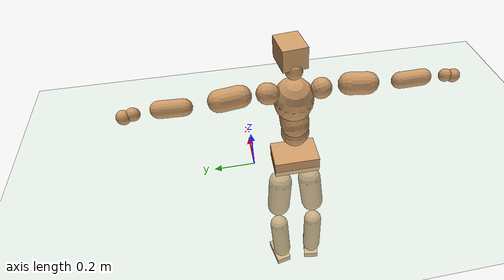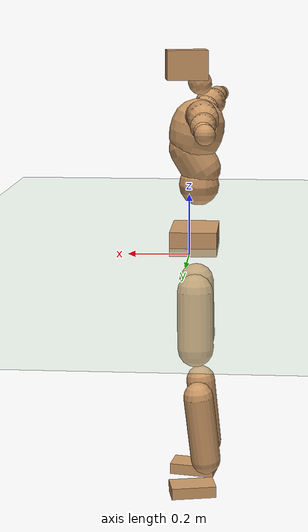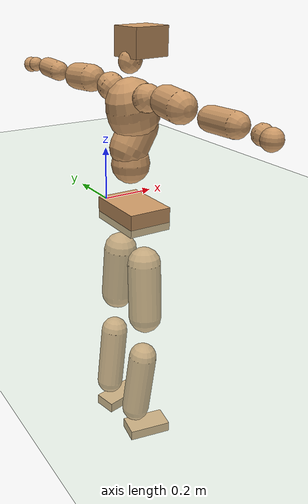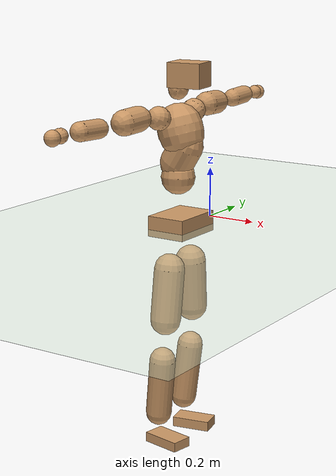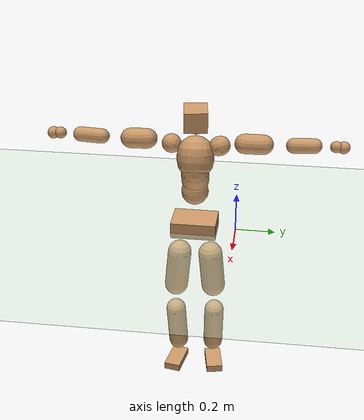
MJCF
<mujoco model="humanoid">
  <compiler coordinate="local" angle="radian"/>
  <default>
    <joint damping="0.0" armature="0.01" stiffness="0.0" limited="true"/>
    <geom conaffinity="1" condim="3" contype="7" margin="0.001" rgba="0.8 0.6 .4 1"/>
  </default>
  <asset>
    <texture type="skybox" builtin="gradient" rgb1=".4 .5 .6" rgb2="0 0 0" width="100" height="100"/>
    <texture builtin="flat" height="1278" mark="cross" markrgb="1 1 1" name="texgeom" random="0.01" rgb1="0.8 0.6 0.4" rgb2="0.8 0.6 0.4" type="cube" width="127"/>
    <texture builtin="checker" height="100" name="texplane" rgb1="0 0 0" rgb2="0.8 0.8 0.8" type="2d" width="100"/>
    <material name="MatPlane" reflectance="0.5" shininess="1" specular="1" texrepeat="60 60" texture="texplane"/>
    <material name="geom" texture="texgeom" texuniform="true"/>
  </asset>
  <worldbody>
    <light cutoff="100" diffuse="1 1 1" dir="-0 0 -1.3" directional="true" exponent="1" pos="0 0 1.3" specular=".1 .1 .1"/>
    <geom conaffinity="1" condim="3" name="floor" pos="0 0 0" rgba="0.8 0.9 0.8 1" size="100 100 .2" type="plane" material="MatPlane"/>
    <body name="Pelvis" pos="-0.0008 -0.2093 0.0247">
      <freejoint name="Pelvis"/>
      <geom type="box" contype="1" conaffinity="1" density="5359.375121" pos="-0.0061 0.0000 -0.0132" size="0.08 0.1134 0.041" quat="1.0000 0.0000 0.0000 -0.0023" name="Pelvis"/>
      <body name="L_Hip" pos="-0.0103 0.0729 -0.0932">
        <joint name="L_Hip_x" type="hinge" pos="0 0 0" axis="1 0 0" stiffness="1600" damping="160" armature="0.02" range="-180.0000 180.0000"/>
        <joint name="L_Hip_y" type="hinge" pos="0 0 0" axis="0 1 0" stiffness="1600" damping="160" armature="0.02" range="-180.0000 180.0000"/>
        <joint name="L_Hip_z" type="hinge" pos="0 0 0" axis="0 0 1" stiffness="1600" damping="160" armature="0.02" range="-180.0000 180.0000"/>
        <geom type="capsule" contype="1" conaffinity="1" density="2040.816327" size="0.0618" fromto="-0.0015 0.0078 -0.0915 -0.0047 0.0248 -0.2894" name="L_Hip"/>
        <body name="L_Knee" pos="-0.0062 0.0327 -0.3809">
          <joint name="L_Knee_x" type="hinge" pos="0 0 0" axis="1 0 0" stiffness="1600" damping="160" armature="0.02" range="-180.0000 180.0000"/>
          <joint name="L_Knee_y" type="hinge" pos="0 0 0" axis="0 1 0" stiffness="1600" damping="160" armature="0.02" range="-180.0000 180.0000"/>
          <joint name="L_Knee_z" type="hinge" pos="0 0 0" axis="0 0 1" stiffness="1600" damping="160" armature="0.02" range="-180.0000 180.0000"/>
          <geom type="capsule" contype="1" conaffinity="1" density="1234.567901" size="0.052" fromto="-0.0094 -0.0023 -0.0814 -0.0363 -0.0091 -0.3161" name="L_Knee"/>
          <body name="L_Ankle" pos="-0.0457 -0.0114 -0.3976">
            <joint name="L_Ankle_x" type="hinge" pos="0 0 0" axis="1 0 0" stiffness="1600" damping="160" armature="0.02" range="-180.0000 180.0000"/>
            <joint name="L_Ankle_y" type="hinge" pos="0 0 0" axis="0 1 0" stiffness="1600" damping="160" armature="0.02" range="-180.0000 180.0000"/>
            <joint name="L_Ankle_z" type="hinge" pos="0 0 0" axis="0 0 1" stiffness="1600" damping="160" armature="0.02" range="-180.0000 180.0000"/>
            <geom type="box" contype="1" conaffinity="1" density="1000.000056" pos="0.0560 0.0113 -0.0272" size="0.0787 0.0429 0.0203" quat="0.9951 0.0000 0.0000 0.0990" name="L_Ankle"/>
            <body name="L_Toe" pos="0.112 0.0225 -0.0544">
              <joint name="L_Toe_x" type="hinge" pos="0 0 0" axis="1 0 0" stiffness="1000" damping="100" armature="0.02" range="-180.0000 180.0000"/>
              <joint name="L_Toe_y" type="hinge" pos="0 0 0" axis="0 1 0" stiffness="1000" damping="100" armature="0.02" range="-180.0000 180.0000"/>
              <joint name="L_Toe_z" type="hinge" pos="0 0 0" axis="0 0 1" stiffness="1000" damping="100" armature="0.02" range="-180.0000 180.0000"/>
              <geom type="box" contype="1" conaffinity="1" density="8326934.365655" pos="0.0000 0.0000 0.0266" size="0.0009 0.0022 0.001" quat="0.9944 0.0000 0.0000 0.1057" name="L_Toe"/>
            </body>
          </body>
        </body>
      </body>
      <body name="R_Hip" pos="-0.0065 -0.0707 -0.0929">
        <joint name="R_Hip_x" type="hinge" pos="0 0 0" axis="1 0 0" stiffness="1600" damping="160" armature="0.02" range="-180.0000 180.0000"/>
        <joint name="R_Hip_y" type="hinge" pos="0 0 0" axis="0 1 0" stiffness="1600" damping="160" armature="0.02" range="-180.0000 180.0000"/>
        <joint name="R_Hip_z" type="hinge" pos="0 0 0" axis="0 0 1" stiffness="1600" damping="160" armature="0.02" range="-180.0000 180.0000"/>
        <geom type="capsule" contype="1" conaffinity="1" density="2040.816327" size="0.061" fromto="-0.0020 -0.0090 -0.0905 -0.0067 -0.0298 -0.2985" name="R_Hip"/>
        <body name="R_Knee" pos="-0.0088 -0.0388 -0.389">
          <joint name="R_Knee_x" type="hinge" pos="0 0 0" axis="1 0 0" stiffness="1600" damping="160" armature="0.02" range="-180.0000 180.0000"/>
          <joint name="R_Knee_y" type="hinge" pos="0 0 0" axis="0 1 0" stiffness="1600" damping="160" armature="0.02" range="-180.0000 180.0000"/>
          <joint name="R_Knee_z" type="hinge" pos="0 0 0" axis="0 0 1" stiffness="1600" damping="160" armature="0.02" range="-180.0000 180.0000"/>
          <geom type="capsule" contype="1" conaffinity="1" density="1234.567901" size="0.0522" fromto="-0.0087 0.0030 -0.0817 -0.0337 0.0117 -0.3162" name="R_Knee"/>
          <body name="R_Ankle" pos="-0.0424 0.0147 -0.3979">
            <joint name="R_Ankle_x" type="hinge" pos="0 0 0" axis="1 0 0" stiffness="1600" damping="160" armature="0.02" range="-180.0000 180.0000"/>
            <joint name="R_Ankle_y" type="hinge" pos="0 0 0" axis="0 1 0" stiffness="1600" damping="160" armature="0.02" range="-180.0000 180.0000"/>
            <joint name="R_Ankle_z" type="hinge" pos="0 0 0" axis="0 0 1" stiffness="1600" damping="160" armature="0.02" range="-180.0000 180.0000"/>
            <geom type="box" contype="1" conaffinity="1" density="1000.000059" pos="0.0575 -0.0103 -0.0244" size="0.0807 0.0435 0.0197" quat="0.9961 0.0000 0.0000 -0.0887" name="R_Ankle"/>
            <body name="R_Toe" pos="0.1151 -0.0206 -0.0488">
              <joint name="R_Toe_x" type="hinge" pos="0 0 0" axis="1 0 0" stiffness="1000" damping="100" armature="0.02" range="-180.0000 180.0000"/>
              <joint name="R_Toe_y" type="hinge" pos="0 0 0" axis="0 1 0" stiffness="1000" damping="100" armature="0.02" range="-180.0000 180.0000"/>
              <joint name="R_Toe_z" type="hinge" pos="0 0 0" axis="0 0 1" stiffness="1000" damping="100" armature="0.02" range="-180.0000 180.0000"/>
              <geom type="box" contype="1" conaffinity="1" density="8293792.306265" pos="0.0000 0.0000 0.0254" size="0.0008 0.0022 0.001" quat="0.9969 0.0000 0.0000 -0.0789" name="R_Toe"/>
            </body>
          </body>
        </body>
      </body>
      <body name="Torso" pos="-0.02 -0.002 0.1066">
        <joint name="Torso_x" type="hinge" pos="0 0 0" axis="1 0 0" stiffness="2000" damping="200" armature="0.02" range="-180.0000 180.0000"/>
        <joint name="Torso_y" type="hinge" pos="0 0 0" axis="0 1 0" stiffness="2000" damping="200" armature="0.02" range="-180.0000 180.0000"/>
        <joint name="Torso_z" type="hinge" pos="0 0 0" axis="0 0 1" stiffness="2000" damping="200" armature="0.02" range="-180.0000 180.0000"/>
        <geom type="capsule" contype="1" conaffinity="1" density="2040.816327" size="0.0683" fromto="-0.0001 0.0017 0.0682 -0.0001 0.0016 0.0653" name="Torso"/>
        <body name="Spine" pos="-0.0001 0.0033 0.1335">
          <joint name="Spine_x" type="hinge" pos="0 0 0" axis="1 0 0" stiffness="2000" damping="200" armature="0.02" range="-180.0000 180.0000"/>
          <joint name="Spine_y" type="hinge" pos="0 0 0" axis="0 1 0" stiffness="2000" damping="200" armature="0.02" range="-180.0000 180.0000"/>
          <joint name="Spine_z" type="hinge" pos="0 0 0" axis="0 0 1" stiffness="2000" damping="200" armature="0.02" range="-180.0000 180.0000"/>
          <geom type="capsule" contype="1" conaffinity="1" density="2040.816327" size="0.0681" fromto="0.0347 0.0025 0.0585 -0.0061 -0.0004 -0.0104" name="Spine"/>
          <body name="Chest" pos="0.0286 0.002 0.0481">
            <joint name="Chest_x" type="hinge" pos="0 0 0" axis="1 0 0" stiffness="2000" damping="200" armature="0.02" range="-180.0000 180.0000"/>
            <joint name="Chest_y" type="hinge" pos="0 0 0" axis="0 1 0" stiffness="2000" damping="200" armature="0.02" range="-180.0000 180.0000"/>
            <joint name="Chest_z" type="hinge" pos="0 0 0" axis="0 0 1" stiffness="2000" damping="200" armature="0.02" range="-180.0000 180.0000"/>
            <geom type="capsule" contype="1" conaffinity="1" density="2040.816327" size="0.0905" fromto="-0.0247 -0.0006 0.0871 -0.0159 -0.0004 0.0562" name="Chest"/>
            <body name="Neck" pos="-0.0525 -0.0018 0.2011">
              <joint name="Neck_x" type="hinge" pos="0 0 0" axis="1 0 0" stiffness="1000" damping="100" armature="0.02" range="-180.0000 180.0000"/>
              <joint name="Neck_y" type="hinge" pos="0 0 0" axis="0 1 0" stiffness="1000" damping="100" armature="0.02" range="-180.0000 180.0000"/>
              <joint name="Neck_z" type="hinge" pos="0 0 0" axis="0 0 1" stiffness="1000" damping="100" armature="0.02" range="-180.0000 180.0000"/>
              <geom type="capsule" contype="1" conaffinity="1" density="1000" size="0.0389" fromto="0.0234 0.0022 0.0310 0.0204 0.0019 0.0269" name="Neck"/>
              <body name="Head" pos="0.0438 0.0041 0.0579">
                <joint name="Head_x" type="hinge" pos="0 0 0" axis="1 0 0" stiffness="1000" damping="100" armature="0.02" range="-180.0000 180.0000"/>
                <joint name="Head_y" type="hinge" pos="0 0 0" axis="0 1 0" stiffness="1000" damping="100" armature="0.02" range="-180.0000 180.0000"/>
                <joint name="Head_z" type="hinge" pos="0 0 0" axis="0 0 1" stiffness="1000" damping="100" armature="0.02" range="-180.0000 180.0000"/>
                <geom type="box" contype="1" conaffinity="1" density="2249.999804" pos="0.0229 0.0031 0.0300" size="0.0681 0.0557 0.0486" quat="0.9978 0.0000 0.0000 0.0662" name="Head"/>
              </body>
            </body>
            <body name="L_Thorax" pos="-0.0321 0.0753 0.1154">
              <joint name="L_Thorax_x" type="hinge" pos="0 0 0" axis="1 0 0" stiffness="1000" damping="100" armature="0.02" range="-180.0000 180.0000"/>
              <joint name="L_Thorax_y" type="hinge" pos="0 0 0" axis="0 1 0" stiffness="1000" damping="100" armature="0.02" range="-180.0000 180.0000"/>
              <joint name="L_Thorax_z" type="hinge" pos="0 0 0" axis="0 0 1" stiffness="1000" damping="100" armature="0.02" range="-180.0000 180.0000"/>
              <geom type="capsule" contype="1" conaffinity="1" density="1000" size="0.0476" fromto="-0.0039 0.0441 0.0174 -0.0032 0.0367 0.0145" name="L_Thorax"/>
              <body name="L_Shoulder" pos="-0.0071 0.0808 0.0319">
                <joint name="L_Shoulder_x" type="hinge" pos="0 0 0" axis="1 0 0" stiffness="1000" damping="100" armature="0.02" range="-720.0000 720.0000"/>
                <joint name="L_Shoulder_y" type="hinge" pos="0 0 0" axis="0 1 0" stiffness="1000" damping="100" armature="0.02" range="-720.0000 720.0000"/>
                <joint name="L_Shoulder_z" type="hinge" pos="0 0 0" axis="0 0 1" stiffness="1000" damping="100" armature="0.02" range="-720.0000 720.0000"/>
                <geom type="capsule" contype="1" conaffinity="1" density="1000" size="0.048" fromto="-0.0081 0.0775 -0.0033 -0.0177 0.1684 -0.0072" name="L_Shoulder"/>
                <body name="L_Elbow" pos="-0.0259 0.2459 -0.0106">
                  <joint name="L_Elbow_x" type="hinge" pos="0 0 0" axis="1 0 0" stiffness="1000" damping="100" armature="0.02" range="-720.0000 720.0000"/>
                  <joint name="L_Elbow_y" type="hinge" pos="0 0 0" axis="0 1 0" stiffness="1000" damping="100" armature="0.02" range="-720.0000 720.0000"/>
                  <joint name="L_Elbow_z" type="hinge" pos="0 0 0" axis="0 0 1" stiffness="1000" damping="100" armature="0.02" range="-720.0000 720.0000"/>
                  <geom type="capsule" contype="1" conaffinity="1" density="1000" size="0.0364" fromto="-0.0002 0.0663 0.0026 -0.0005 0.1646 0.0065" name="L_Elbow"/>
                  <body name="L_Wrist" pos="-0.0007 0.2309 0.0091">
                    <joint name="L_Wrist_x" type="hinge" pos="0 0 0" axis="1 0 0" stiffness="600" damping="60" armature="0.02" range="-180.0000 180.0000"/>
                    <joint name="L_Wrist_y" type="hinge" pos="0 0 0" axis="0 1 0" stiffness="600" damping="60" armature="0.02" range="-180.0000 180.0000"/>
                    <joint name="L_Wrist_z" type="hinge" pos="0 0 0" axis="0 0 1" stiffness="600" damping="60" armature="0.02" range="-180.0000 180.0000"/>
                    <geom type="capsule" contype="1" conaffinity="1" density="1000" size="0.0278" fromto="-0.0060 0.0357 -0.0044 -0.0063 0.0376 -0.0046" name="L_Wrist"/>
                    <body name="L_Hand" pos="-0.0123 0.0733 -0.009">
                      <joint name="L_Hand_x" type="hinge" pos="0 0 0" axis="1 0 0" stiffness="600" damping="60" armature="0.02" range="-180.0000 180.0000"/>
                      <joint name="L_Hand_y" type="hinge" pos="0 0 0" axis="0 1 0" stiffness="600" damping="60" armature="0.02" range="-180.0000 180.0000"/>
                      <joint name="L_Hand_z" type="hinge" pos="0 0 0" axis="0 0 1" stiffness="600" damping="60" armature="0.02" range="-180.0000 180.0000"/>
                      <geom type="sphere" contype="1" conaffinity="1" density="1000" size="0.0297" pos="0.0000 0.0000 0.0000" name="L_Hand"/>
                    </body>
                  </body>
                </body>
              </body>
            </body>
            <body name="R_Thorax" pos="-0.0373 -0.0767 0.1134">
              <joint name="R_Thorax_x" type="hinge" pos="0 0 0" axis="1 0 0" stiffness="1000" damping="100" armature="0.02" range="-180.0000 180.0000"/>
              <joint name="R_Thorax_y" type="hinge" pos="0 0 0" axis="0 1 0" stiffness="1000" damping="100" armature="0.02" range="-180.0000 180.0000"/>
              <joint name="R_Thorax_z" type="hinge" pos="0 0 0" axis="0 0 1" stiffness="1000" damping="100" armature="0.02" range="-180.0000 180.0000"/>
              <geom type="capsule" contype="1" conaffinity="1" density="1000" size="0.0466" fromto="-0.0046 -0.0417 0.0166 -0.0048 -0.0436 0.0173" name="R_Thorax"/>
              <body name="R_Shoulder" pos="-0.0093 -0.0853 0.0339">
                <joint name="R_Shoulder_x" type="hinge" pos="0 0 0" axis="1 0 0" stiffness="1000" damping="100" armature="0.02" range="-720.0000 720.0000"/>
                <joint name="R_Shoulder_y" type="hinge" pos="0 0 0" axis="0 1 0" stiffness="1000" damping="100" armature="0.02" range="-720.0000 720.0000"/>
                <joint name="R_Shoulder_z" type="hinge" pos="0 0 0" axis="0 0 1" stiffness="1000" damping="100" armature="0.02" range="-720.0000 720.0000"/>
                <geom type="capsule" contype="1" conaffinity="1" density="1000" size="0.0493" fromto="-0.0060 -0.0789 -0.0042 -0.0123 -0.1616 -0.0086" name="R_Shoulder"/>
                <body name="R_Elbow" pos="-0.0183 -0.2405 -0.0129">
                  <joint name="R_Elbow_x" type="hinge" pos="0 0 0" axis="1 0 0" stiffness="1000" damping="100" armature="0.02" range="-720.0000 720.0000"/>
                  <joint name="R_Elbow_y" type="hinge" pos="0 0 0" axis="0 1 0" stiffness="1000" damping="100" armature="0.02" range="-720.0000 720.0000"/>
                  <joint name="R_Elbow_z" type="hinge" pos="0 0 0" axis="0 0 1" stiffness="1000" damping="100" armature="0.02" range="-720.0000 720.0000"/>
                  <geom type="capsule" contype="1" conaffinity="1" density="1000" size="0.0364" fromto="-0.0014 -0.0664 0.0024 -0.0036 -0.1738 0.0063" name="R_Elbow"/>
                  <body name="R_Wrist" pos="-0.005 -0.2402 0.0087">
                    <joint name="R_Wrist_x" type="hinge" pos="0 0 0" axis="1 0 0" stiffness="600" damping="60" armature="0.02" range="-180.0000 180.0000"/>
                    <joint name="R_Wrist_y" type="hinge" pos="0 0 0" axis="0 1 0" stiffness="600" damping="60" armature="0.02" range="-180.0000 180.0000"/>
                    <joint name="R_Wrist_z" type="hinge" pos="0 0 0" axis="0 0 1" stiffness="600" damping="60" armature="0.02" range="-180.0000 180.0000"/>
                    <geom type="capsule" contype="1" conaffinity="1" density="1000" size="0.0284" fromto="-0.0047 -0.0360 -0.0032 -0.0049 -0.0380 -0.0034" name="R_Wrist"/>
                    <body name="R_Hand" pos="-0.0096 -0.074 -0.0066">
                      <joint name="R_Hand_x" type="hinge" pos="0 0 0" axis="1 0 0" stiffness="600" damping="60" armature="0.02" range="-180.0000 180.0000"/>
                      <joint name="R_Hand_y" type="hinge" pos="0 0 0" axis="0 1 0" stiffness="600" damping="60" armature="0.02" range="-180.0000 180.0000"/>
                      <joint name="R_Hand_z" type="hinge" pos="0 0 0" axis="0 0 1" stiffness="600" damping="60" armature="0.02" range="-180.0000 180.0000"/>
                      <geom type="sphere" contype="1" conaffinity="1" density="1000" size="0.0298" pos="0.0000 0.0000 0.0000" name="R_Hand"/>
                    </body>
                  </body>
                </body>
              </body>
            </body>
          </body>
        </body>
      </body>
    </body>
  </worldbody>
  <actuator>
    <motor name="L_Hip_x" joint="L_Hip_x" gear="500"/>
    <motor name="L_Hip_y" joint="L_Hip_y" gear="500"/>
    <motor name="L_Hip_z" joint="L_Hip_z" gear="500"/>
    <motor name="L_Knee_x" joint="L_Knee_x" gear="500"/>
    <motor name="L_Knee_y" joint="L_Knee_y" gear="500"/>
    <motor name="L_Knee_z" joint="L_Knee_z" gear="500"/>
    <motor name="L_Ankle_x" joint="L_Ankle_x" gear="500"/>
    <motor name="L_Ankle_y" joint="L_Ankle_y" gear="500"/>
    <motor name="L_Ankle_z" joint="L_Ankle_z" gear="500"/>
    <motor name="L_Toe_x" joint="L_Toe_x" gear="500"/>
    <motor name="L_Toe_y" joint="L_Toe_y" gear="500"/>
    <motor name="L_Toe_z" joint="L_Toe_z" gear="500"/>
    <motor name="R_Hip_x" joint="R_Hip_x" gear="500"/>
    <motor name="R_Hip_y" joint="R_Hip_y" gear="500"/>
    <motor name="R_Hip_z" joint="R_Hip_z" gear="500"/>
    <motor name="R_Knee_x" joint="R_Knee_x" gear="500"/>
    <motor name="R_Knee_y" joint="R_Knee_y" gear="500"/>
    <motor name="R_Knee_z" joint="R_Knee_z" gear="500"/>
    <motor name="R_Ankle_x" joint="R_Ankle_x" gear="500"/>
    <motor name="R_Ankle_y" joint="R_Ankle_y" gear="500"/>
    <motor name="R_Ankle_z" joint="R_Ankle_z" gear="500"/>
    <motor name="R_Toe_x" joint="R_Toe_x" gear="500"/>
    <motor name="R_Toe_y" joint="R_Toe_y" gear="500"/>
    <motor name="R_Toe_z" joint="R_Toe_z" gear="500"/>
    <motor name="Torso_x" joint="Torso_x" gear="500"/>
    <motor name="Torso_y" joint="Torso_y" gear="500"/>
    <motor name="Torso_z" joint="Torso_z" gear="500"/>
    <motor name="Spine_x" joint="Spine_x" gear="500"/>
    <motor name="Spine_y" joint="Spine_y" gear="500"/>
    <motor name="Spine_z" joint="Spine_z" gear="500"/>
    <motor name="Chest_x" joint="Chest_x" gear="500"/>
    <motor name="Chest_y" joint="Chest_y" gear="500"/>
    <motor name="Chest_z" joint="Chest_z" gear="500"/>
    <motor name="Neck_x" joint="Neck_x" gear="500"/>
    <motor name="Neck_y" joint="Neck_y" gear="500"/>
    <motor name="Neck_z" joint="Neck_z" gear="500"/>
    <motor name="Head_x" joint="Head_x" gear="500"/>
    <motor name="Head_y" joint="Head_y" gear="500"/>
    <motor name="Head_z" joint="Head_z" gear="500"/>
    <motor name="L_Thorax_x" joint="L_Thorax_x" gear="500"/>
    <motor name="L_Thorax_y" joint="L_Thorax_y" gear="500"/>
    <motor name="L_Thorax_z" joint="L_Thorax_z" gear="500"/>
    <motor name="L_Shoulder_x" joint="L_Shoulder_x" gear="500"/>
    <motor name="L_Shoulder_y" joint="L_Shoulder_y" gear="500"/>
    <motor name="L_Shoulder_z" joint="L_Shoulder_z" gear="500"/>
    <motor name="L_Elbow_x" joint="L_Elbow_x" gear="500"/>
    <motor name="L_Elbow_y" joint="L_Elbow_y" gear="500"/>
    <motor name="L_Elbow_z" joint="L_Elbow_z" gear="500"/>
    <motor name="L_Wrist_x" joint="L_Wrist_x" gear="500"/>
    <motor name="L_Wrist_y" joint="L_Wrist_y" gear="500"/>
    <motor name="L_Wrist_z" joint="L_Wrist_z" gear="500"/>
    <motor name="L_Hand_x" joint="L_Hand_x" gear="500"/>
    <motor name="L_Hand_y" joint="L_Hand_y" gear="500"/>
    <motor name="L_Hand_z" joint="L_Hand_z" gear="500"/>
    <motor name="R_Thorax_x" joint="R_Thorax_x" gear="500"/>
    <motor name="R_Thorax_y" joint="R_Thorax_y" gear="500"/>
    <motor name="R_Thorax_z" joint="R_Thorax_z" gear="500"/>
    <motor name="R_Shoulder_x" joint="R_Shoulder_x" gear="500"/>
    <motor name="R_Shoulder_y" joint="R_Shoulder_y" gear="500"/>
    <motor name="R_Shoulder_z" joint="R_Shoulder_z" gear="500"/>
    <motor name="R_Elbow_x" joint="R_Elbow_x" gear="500"/>
    <motor name="R_Elbow_y" joint="R_Elbow_y" gear="500"/>
    <motor name="R_Elbow_z" joint="R_Elbow_z" gear="500"/>
    <motor name="R_Wrist_x" joint="R_Wrist_x" gear="500"/>
    <motor name="R_Wrist_y" joint="R_Wrist_y" gear="500"/>
    <motor name="R_Wrist_z" joint="R_Wrist_z" gear="500"/>
    <motor name="R_Hand_x" joint="R_Hand_x" gear="500"/>
    <motor name="R_Hand_y" joint="R_Hand_y" gear="500"/>
    <motor name="R_Hand_z" joint="R_Hand_z" gear="500"/>
  </actuator>
  <contact>
    <exclude body1="Torso" body2="Chest"/>
    <exclude body1="Head" body2="Chest"/>
    <exclude body1="R_Knee" body2="R_Toe"/>
    <exclude body1="R_Knee" body2="L_Ankle"/>
    <exclude body1="R_Knee" body2="L_Toe"/>
    <exclude body1="L_Knee" body2="L_Toe"/>
    <exclude body1="L_Knee" body2="R_Ankle"/>
    <exclude body1="L_Knee" body2="R_Toe"/>
    <exclude body1="L_Shoulder" body2="Chest"/>
    <exclude body1="R_Shoulder" body2="Chest"/>
  </contact>
  <sensor/>
  <size njmax="700" nconmax="700"/>
</mujoco>
